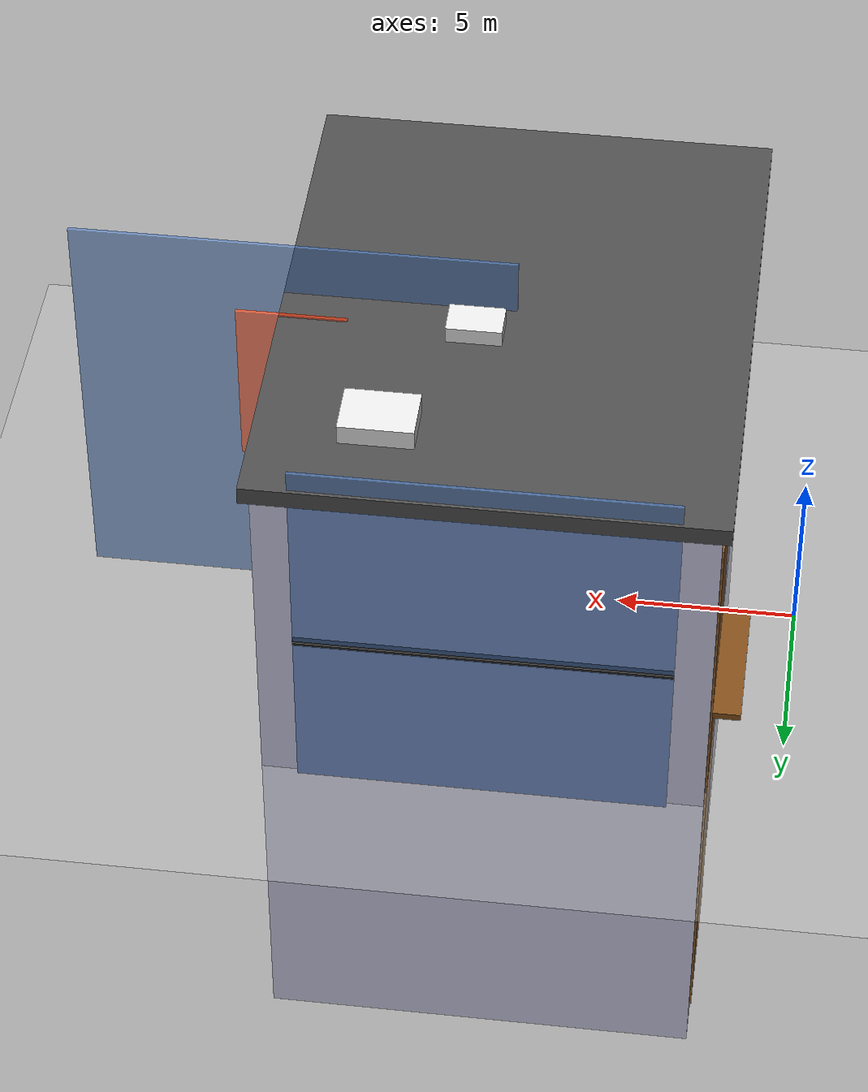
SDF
<sdf version="1.8">
 <world name="building_fire">
  <spherical_coordinates>
   <surface_model>EARTH_WGS84</surface_model>
   <latitude_deg>0</latitude_deg>
   <longitude_deg>0</longitude_deg>
   <elevation>0</elevation>
   <heading_deg>0</heading_deg>
  </spherical_coordinates>
  <plugin filename="gz-sim-physics-system" name="gz::sim::systems::Physics">
   <engine><filename>gz-physics-dartsim-plugin</filename></engine>
  </plugin>
  <plugin filename="gz-sim-scene-broadcaster-system" name="gz::sim::systems::SceneBroadcaster"/>
  <plugin filename="gz-sim-user-commands-system" name="gz::sim::systems::UserCommands"/>
  <plugin filename="gz-sim-imu-system" name="gz::sim::systems::Imu"/>
  <plugin filename="gz-sim-air-pressure-system" name="gz::sim::systems::AirPressure"/>
  <plugin filename="gz-sim-navsat-system" name="gz::sim::systems::NavSat"/>
  <include><uri>model://ground_plane</uri><name>ground</name></include>
  <light name="sun" type="directional">
   <pose>0 0 10 0 0 0</pose>
   <diffuse>1 1 1 1</diffuse>
   <specular>0.1 0.1 0.1 1</specular>
   <attenuation>
    <range>1000</range>
    <constant>0.9</constant>
    <linear>0.01</linear>
    <quadratic>0.001</quadratic>
   </attenuation>
   <direction>-0.5 0.1 -1.0</direction>
  </light>
  <model name="office_building">
   <static>true</static>
   <pose>8 0 0 0 0 0</pose>
   <link name="main_structure">
    <collision name="main_collision"><geometry><box><size>12 15 20</size></box></geometry></collision>
    <visual name="main_visual">
     <geometry><box><size>12 15 20</size></box></geometry>
     <material>
      <ambient>0.8 0.8 0.9 1</ambient>
      <diffuse>0.8 0.8 0.9 1</diffuse>
      <specular>0.1 0.1 0.1 1</specular>
     </material>
    </visual>
   </link>
   <link name="windows_front">
    <pose>0 7.6 5 0 0 0</pose>
    <visual name="window_row1">
     <geometry><box><size>10 0.1 12</size></box></geometry>
     <material>
      <ambient>0.3 0.5 0.8 0.6</ambient>
      <diffuse>0.3 0.5 0.8 0.6</diffuse>
      <specular>0.9 0.9 1.0 1</specular>
     </material>
    </visual>
    <visual name="window_grid">
     <geometry><box><size>10 0.2 0.1</size></box></geometry>
     <material><ambient>0.1 0.1 0.1 1</ambient><diffuse>0.1 0.1 0.1 1</diffuse></material>
    </visual>
   </link>
   <link name="windows_side1">
    <pose>6 0 5 0 1.5708 0</pose>
    <visual name="side_window1">
     <geometry><box><size>14 0.1 12</size></box></geometry>
     <material>
      <ambient>0.3 0.5 0.8 0.6</ambient>
      <diffuse>0.3 0.5 0.8 0.6</diffuse>
      <specular>0.9 0.9 1.0 1</specular>
     </material>
    </visual>
   </link>
   <link name="roof">
    <pose>0 0 10.2 0 0 0</pose>
    <collision name="roof_collision"><geometry><box><size>12.5 15.5 0.5</size></box></geometry></collision>
    <visual name="roof_visual">
     <geometry><box><size>12.5 15.5 0.5</size></box></geometry>
     <material>
      <ambient>0.3 0.3 0.3 1</ambient>
      <diffuse>0.3 0.3 0.3 1</diffuse>
      <specular>0.1 0.1 0.1 1</specular>
     </material>
    </visual>
   </link>
   <link name="entrance">
    <pose>0 -7.4 1 0 0 0</pose>
    <visual name="entrance_door">
     <geometry><box><size>3 0.2 4</size></box></geometry>
     <material><ambient>0.4 0.2 0.1 1</ambient><diffuse>0.4 0.2 0.1 1</diffuse></material>
    </visual>
    <visual name="entrance_canopy">
     <pose>0 0.5 2.5 0 0 0</pose>
     <geometry><box><size>5 2 0.2</size></box></geometry>
     <material><ambient>0.2 0.2 0.3 1</ambient><diffuse>0.2 0.2 0.3 1</diffuse></material>
    </visual>
   </link>
   <link name="fire_escape">
    <pose>-5.8 5 0 0 0 0</pose>
    <visual name="staircase">
     <geometry><box><size>0.5 4 18</size></box></geometry>
     <material><ambient>0.6 0.4 0.2 1</ambient><diffuse>0.6 0.4 0.2 1</diffuse></material>
    </visual>
    <visual name="stair_platform1">
     <pose>0 0 3 0 0 0</pose>
     <geometry><box><size>2 4 0.2</size></box></geometry>
     <material><ambient>0.5 0.3 0.1 1</ambient><diffuse>0.5 0.3 0.1 1</diffuse></material>
    </visual>
   </link>
   <link name="hvac_units">
    <pose>3 5 10.5 0 0 0</pose>
    <visual name="hvac1">
     <geometry><box><size>2 1.5 1</size></box></geometry>
     <material><ambient>0.9 0.9 0.9 1</ambient><diffuse>0.9 0.9 0.9 1</diffuse></material>
    </visual>
    <visual name="hvac2">
     <pose>-2 -4 0 0 0 0</pose>
     <geometry><box><size>1.5 1 0.8</size></box></geometry>
     <material><ambient>0.9 0.9 0.9 1</ambient><diffuse>0.9 0.9 0.9 1</diffuse></material>
    </visual>
   </link>
  </model>
  <model name="building_fire_effects">
   <pose>8 0 0 0 0 0</pose>
   <static>true</static>
   <link name="main_fire_source">
    <particle_emitter name="intense_fire" type="box">
     <emitting>true</emitting>
     <pose>0 3 6 0 0 0</pose>
     <size>5 0.8 3</size>
     <particle_size>0.8 0.8 0.8</particle_size>
     <lifetime>1.8</lifetime>
     <rate>80</rate>
     <min_velocity>1.2</min_velocity>
     <max_velocity>3.0</max_velocity>
     <scale_rate>0.3</scale_rate>
     <color_start>1.0 0.1 0.0 1.0</color_start>
     <color_end>1.0 0.9 0.1 0.0</color_end>
     <particle_scatter_ratio>0.7</particle_scatter_ratio>
    </particle_emitter>
    <particle_emitter name="flicker_fire" type="box">
     <emitting>true</emitting>
     <pose>-2 5 8 0 0 0</pose>
     <size>2 0.3 2</size>
     <particle_size>0.6 0.6 0.6</particle_size>
     <lifetime>1.2</lifetime>
     <rate>45</rate>
     <min_velocity>0.8</min_velocity>
     <max_velocity>2.2</max_velocity>
     <scale_rate>0.25</scale_rate>
     <color_start>1.0 0.4 0.0 1.0</color_start>
     <color_end>1.0 1.0 0.3 0.0</color_end>
    </particle_emitter>
   </link>
   <link name="smoke_plume">
    <particle_emitter name="dense_smoke" type="box">
     <emitting>true</emitting>
     <pose>0 4 12 0 0 0</pose>
     <size>7 1.2 5</size>
     <particle_size>2.0 2.0 2.0</particle_size>
     <lifetime>12.0</lifetime>
     <rate>60</rate>
     <min_velocity>1.0</min_velocity>
     <max_velocity>3.5</max_velocity>
     <scale_rate>1.2</scale_rate>
     <color_start>0.15 0.15 0.15 0.9</color_start>
     <color_end>0.6 0.6 0.6 0.0</color_end>
     <particle_scatter_ratio>0.8</particle_scatter_ratio>
    </particle_emitter>
    <particle_emitter name="roof_smoke_1" type="box">
     <emitting>true</emitting>
     <pose>3 -4 10.8 0 0 0</pose>
     <size>2 0.4 1.5</size>
     <particle_size>1.5 1.5 1.5</particle_size>
     <lifetime>8.0</lifetime>
     <rate>25</rate>
     <min_velocity>0.7</min_velocity>
     <max_velocity>2.2</max_velocity>
     <scale_rate>0.9</scale_rate>
     <color_start>0.25 0.25 0.25 0.8</color_start>
     <color_end>0.5 0.5 0.5 0.0</color_end>
    </particle_emitter>
    <particle_emitter name="roof_smoke_2" type="box">
     <emitting>true</emitting>
     <pose>-3 2 10.8 0 0 0</pose>
     <size>1.5 0.3 1.2</size>
     <particle_size>1.3 1.3 1.3</particle_size>
     <lifetime>6.5</lifetime>
     <rate>20</rate>
     <min_velocity>0.6</min_velocity>
     <max_velocity>1.8</max_velocity>
     <scale_rate>0.7</scale_rate>
     <color_start>0.3 0.3 0.3 0.7</color_start>
     <color_end>0.55 0.55 0.55 0.0</color_end>
    </particle_emitter>
   </link>
   <link name="fire_illumination">
    <visual name="glow_window_front">
     <pose>0 7.5 6 0 0 0</pose>
     <geometry><box><size>8 0.1 4</size></box></geometry>
     <material>
      <ambient>1.0 0.3 0.0 0.7</ambient>
      <diffuse>1.0 0.3 0.0 0.7</diffuse>
      <emissive>1.0 0.5 0.2 0.9</emissive>
     </material>
    </visual>
    <visual name="glow_window_side">
     <pose>5.9 1 8 0 1.5708 0</pose>
     <geometry><box><size>5 0.1 3</size></box></geometry>
     <material>
      <ambient>1.0 0.2 0.0 0.6</ambient>
      <diffuse>1.0 0.2 0.0 0.6</diffuse>
      <emissive>1.0 0.4 0.1 0.8</emissive>
     </material>
    </visual>
    <visual name="ground_glow">
     <pose>0 5 -9.8 0 0 0</pose>
     <geometry><box><size>6 4 0.1</size></box></geometry>
     <material>
      <ambient>1.0 0.4 0.1 0.4</ambient>
      <diffuse>1.0 0.4 0.1 0.4</diffuse>
      <emissive>1.0 0.5 0.2 0.6</emissive>
     </material>
    </visual>
   </link>
  </model>
  <light name="fire_light_1" type="point">
   <pose>10 3 6 0 0 0</pose>
   <diffuse>1.0 0.3 0.1 1.0</diffuse>
   <specular>1.0 0.5 0.2 1.0</specular>
   <attenuation>
    <range>15</range>
    <constant>0.5</constant>
    <linear>0.2</linear>
    <quadratic>0.01</quadratic>
   </attenuation>
  </light>
  <light name="fire_light_2" type="point">
   <pose>6 8 8 0 0 0</pose>
   <diffuse>1.0 0.4 0.1 1.0</diffuse>
   <specular>1.0 0.6 0.3 1.0</specular>
   <attenuation>
    <range>12</range>
    <constant>0.6</constant>
    <linear>0.3</linear>
    <quadratic>0.02</quadratic>
   </attenuation>
  </light>
 </world>
</sdf>
